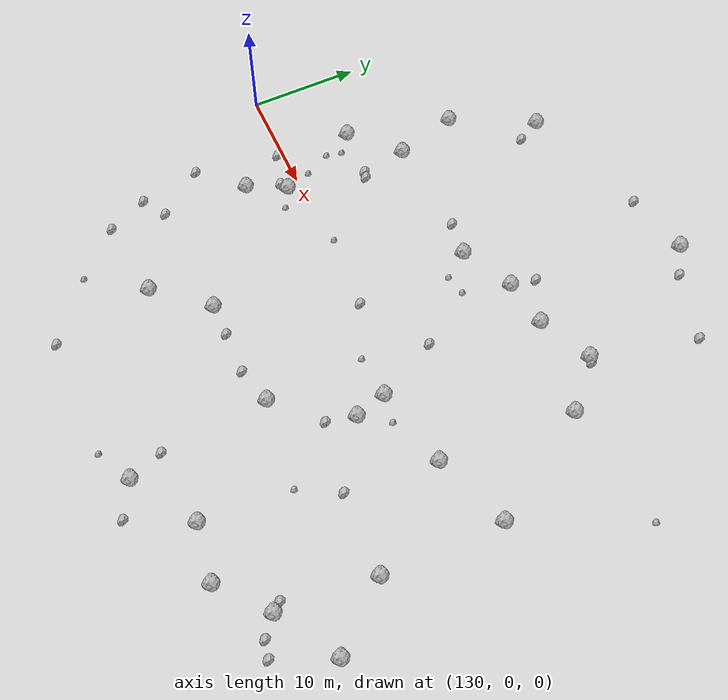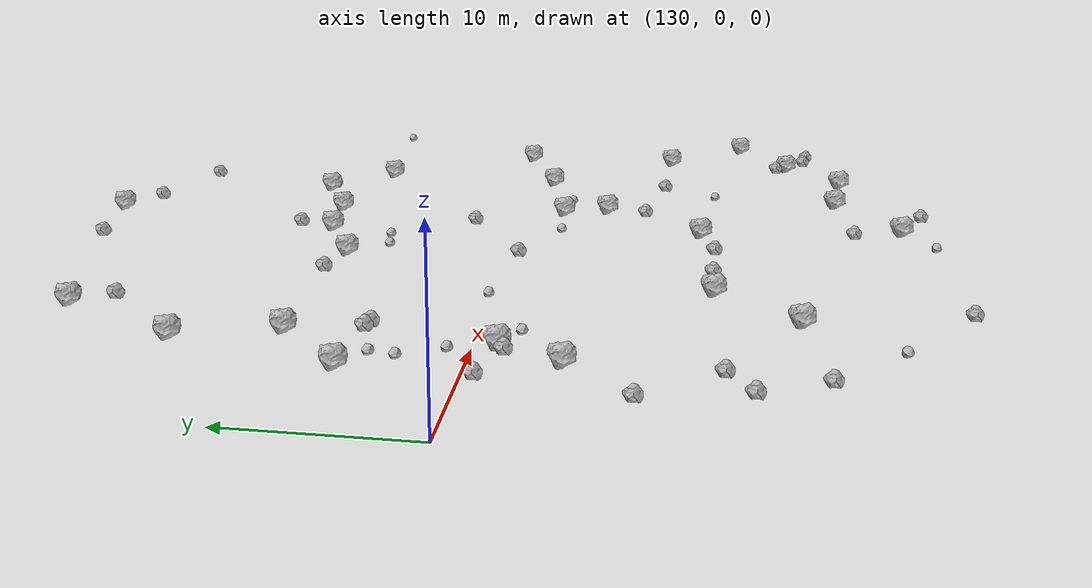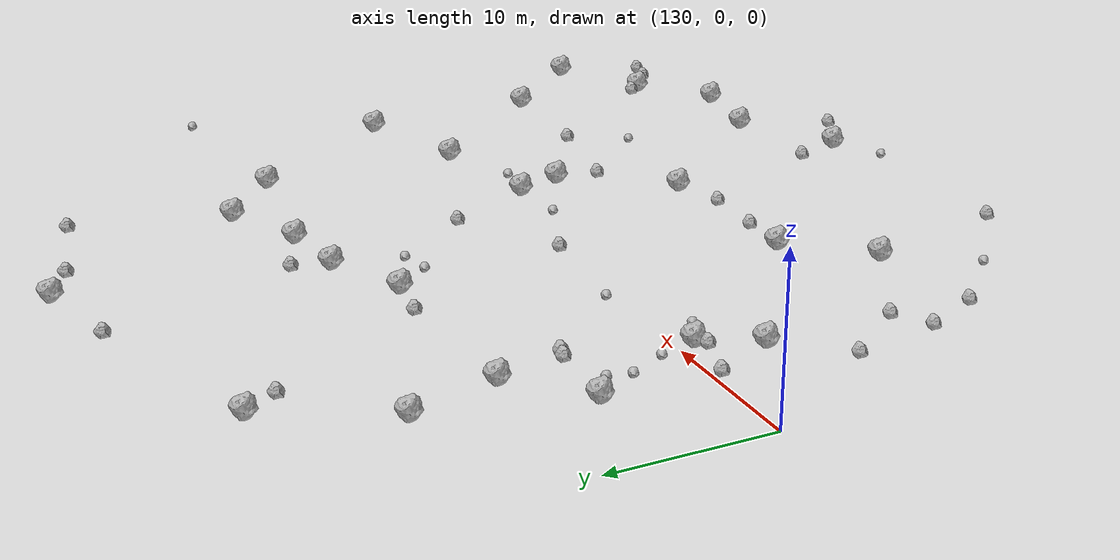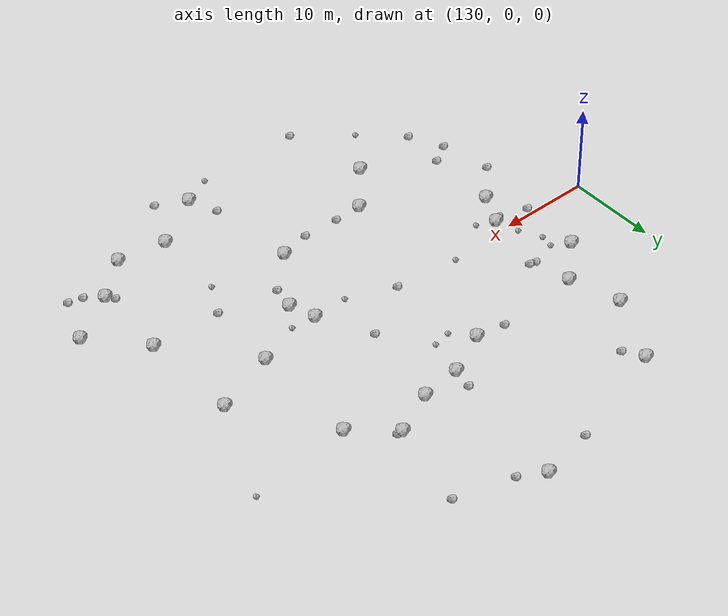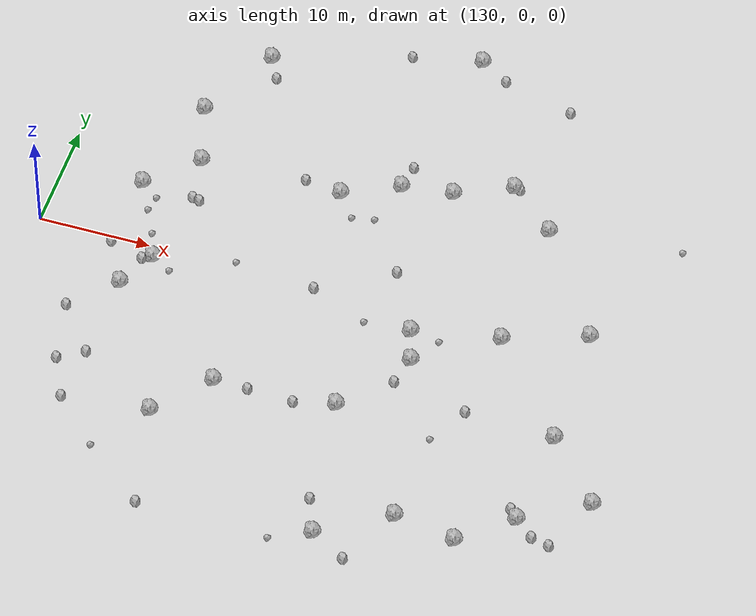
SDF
<sdf version="1.6">
 <world name="default">
  <include><uri>model://sun</uri></include>
  <model name="rock1_4_2">
   <include><uri>model://rock1</uri><pose>141.2948642835391 10.244398767035278 0.5 0 0 0</pose></include>
  </model>
  <model name="rock1_4_3">
   <include><uri>model://rock1</uri><pose>178.91906402392968 1.7877701791086196 0.5 0 0 0</pose></include>
  </model>
  <model name="rock1_4_4">
   <include><uri>model://rock1</uri><pose>138.97126836219502 -4.655300727973909 0.5 0 0 0</pose></include>
  </model>
  <model name="rock1_4_5">
   <include><uri>model://rock1</uri><pose>171.83903862915193 -0.6767519039436998 0.5 0 0 0</pose></include>
  </model>
  <model name="rock1_4_6">
   <include><uri>model://rock1</uri><pose>153.9897494964462 10.373310837223237 0.5 0 0 0</pose></include>
  </model>
  <model name="rock1_4_7">
   <include><uri>model://rock1</uri><pose>183.83128226795515 -14.881187880556059 0.5 0 0 0</pose></include>
  </model>
  <model name="rock1_4_8">
   <include><uri>model://rock1</uri><pose>168.23735215238227 15.494611902185866 0.5 0 0 0</pose></include>
  </model>
  <model name="rock1_4_9">
   <include><uri>model://rock1</uri><pose>158.81618112194099 12.679677974888222 0.5 0 0 0</pose></include>
  </model>
  <model name="rock1_4_10">
   <include><uri>model://rock1</uri><pose>137.20557807359523 6.35323375775971 0.5 0 0 0</pose></include>
  </model>
  <model name="rock1_4_11">
   <include><uri>model://rock1</uri><pose>165.1589130768262 -5.13469923959903 0.5 0 0 0</pose></include>
  </model>
  <model name="rock1_4_12">
   <include><uri>model://rock1</uri><pose>178.29936744005036 -18.198119758564147 0.5 0 0 0</pose></include>
  </model>
  <model name="rock1_4_13">
   <include><uri>model://rock1</uri><pose>174.01718051051427 -21.73492630758345 0.5 0 0 0</pose></include>
  </model>
  <model name="rock1_4_14">
   <include><uri>model://rock1</uri><pose>160.57654238745403 -11.48922303453309 0.5 0 0 0</pose></include>
  </model>
  <model name="rock1_4_15">
   <include><uri>model://rock1</uri><pose>172.44007826673214 11.754373896801347 0.5 0 0 0</pose></include>
  </model>
  <model name="rock1_4_16">
   <include><uri>model://rock1</uri><pose>162.72666093477503 -24.503844207868795 0.5 0 0 0</pose></include>
  </model>
  <model name="rock1_4_17">
   <include><uri>model://rock1</uri><pose>164.25572143038787 -2.213193607192526 0.5 0 0 0</pose></include>
  </model>
  <model name="rock1_4_18">
   <include><uri>model://rock1</uri><pose>178.9823131051574 -9.327160343594485 0.5 0 0 0</pose></include>
  </model>
  <model name="rock1_4_19">
   <include><uri>model://rock1</uri><pose>143.44675627610047 23.317852640166578 0.5 0 0 0</pose></include>
  </model>
  <model name="rock1_4_20">
   <include><uri>model://rock1</uri><pose>145.89107724175503 -16.74009601169268 0.5 0 0 0</pose></include>
  </model>
  <model name="rock1_4_21">
   <include><uri>model://rock1</uri><pose>163.3552137860157 13.265629290001044 0.5 0 0 0</pose></include>
  </model>
  <model name="rock1_4_22">
   <include><uri>model://rock1</uri><pose>140.73578703354295 -1.1828196008135201 0.5 0 0 0</pose></include>
  </model>
  <model name="rock1_4_23">
   <include><uri>model://rock1</uri><pose>161.46813076423769 28.506312337856713 0.5 0 0 0</pose></include>
  </model>
  <model name="rock1_4_24">
   <include><uri>model://rock1</uri><pose>149.94314863434084 -12.165202254761603 0.5 0 0 0</pose></include>
  </model>
  <model name="rock1_4_25">
   <include><uri>model://rock1</uri><pose>139.64817234133005 15.906190477715697 0.5 0 0 0</pose></include>
  </model>
  <model name="rock1_4_26">
   <include><uri>model://rock1</uri><pose>168.63049511700285 -20.864258532875915 0.5 0 0 0</pose></include>
  </model>
  <model name="rock2_4_0">
   <include><uri>model://rock2</uri><pose>161.2632724087291 3.4891525238041083 0.3 0 0 0</pose></include>
  </model>
  <model name="rock2_4_1">
   <include><uri>model://rock2</uri><pose>179.96659379343322 -19.58591639116535 0.3 0 0 0</pose></include>
  </model>
  <model name="rock2_4_2">
   <include><uri>model://rock2</uri><pose>141.8806042518827 6.076555109470178 0.3 0 0 0</pose></include>
  </model>
  <model name="rock2_4_3">
   <include><uri>model://rock2</uri><pose>136.76152932253672 -0.6063844149207078 0.3 0 0 0</pose></include>
  </model>
  <model name="rock2_4_4">
   <include><uri>model://rock2</uri><pose>177.56902055777985 -17.35654899952295 0.3 0 0 0</pose></include>
  </model>
  <model name="rock2_4_5">
   <include><uri>model://rock2</uri><pose>171.11401899012253 -8.986533274121264 0.3 0 0 0</pose></include>
  </model>
  <model name="rock2_4_6">
   <include><uri>model://rock2</uri><pose>181.55997039983606 -19.96054230782696 0.3 0 0 0</pose></include>
  </model>
  <model name="rock2_4_7">
   <include><uri>model://rock2</uri><pose>170.5351748403075 25.12999434011072 0.3 0 0 0</pose></include>
  </model>
  <model name="rock2_4_8">
   <include><uri>model://rock2</uri><pose>147.84631939117224 -25.957433406107562 0.3 0 0 0</pose></include>
  </model>
  <model name="rock2_4_9">
   <include><uri>model://rock2</uri><pose>164.50641521229264 -7.772113929558564 0.3 0 0 0</pose></include>
  </model>
  <model name="rock2_4_10">
   <include><uri>model://rock2</uri><pose>138.28552261861904 -17.565269645438068 0.3 0 0 0</pose></include>
  </model>
  <model name="rock2_4_11">
   <include><uri>model://rock2</uri><pose>138.72250769086094 -12.54326629599155 0.3 0 0 0</pose></include>
  </model>
  <model name="rock2_4_12">
   <include><uri>model://rock2</uri><pose>161.46040594181858 -21.33156392116213 0.3 0 0 0</pose></include>
  </model>
  <model name="rock2_4_13">
   <include><uri>model://rock2</uri><pose>157.0343199826508 -12.327780157547139 0.3 0 0 0</pose></include>
  </model>
  <model name="rock2_4_14">
   <include><uri>model://rock2</uri><pose>142.54499615600213 5.8978535641638175 0.3 0 0 0</pose></include>
  </model>
  <model name="rock2_4_15">
   <include><uri>model://rock2</uri><pose>168.75567567003347 15.414375659663222 0.3 0 0 0</pose></include>
  </model>
  <model name="rock2_4_16">
   <include><uri>model://rock2</uri><pose>155.3432115321631 27.20867602311877 0.3 0 0 0</pose></include>
  </model>
  <model name="rock2_4_17">
   <include><uri>model://rock2</uri><pose>154.9808271060756 -0.28182780897580884 0.3 0 0 0</pose></include>
  </model>
  <model name="rock2_4_18">
   <include><uri>model://rock2</uri><pose>150.65362793025906 10.881481678952973 0.3 0 0 0</pose></include>
  </model>
  <model name="rock2_4_19">
   <include><uri>model://rock2</uri><pose>139.88993570279402 -1.6091070690988616 0.3 0 0 0</pose></include>
  </model>
  <model name="rock2_4_20">
   <include><uri>model://rock2</uri><pose>136.5377028351607 -13.88109703976292 0.3 0 0 0</pose></include>
  </model>
  <model name="rock2_4_21">
   <include><uri>model://rock2</uri><pose>135.4084188192905 -8.301738477240416 0.3 0 0 0</pose></include>
  </model>
  <model name="rock2_4_22">
   <include><uri>model://rock2</uri><pose>164.08830794830558 26.91743640725432 0.3 0 0 0</pose></include>
  </model>
  <model name="rock2_4_23">
   <include><uri>model://rock2</uri><pose>144.57909921455223 21.161557727188864 0.3 0 0 0</pose></include>
  </model>
  <model name="rock2_4_24">
   <include><uri>model://rock2</uri><pose>165.86691763227543 -26.245595524829625 0.3 0 0 0</pose></include>
  </model>
  <model name="rock2_4_25">
   <include><uri>model://rock2</uri><pose>159.22646190754202 14.997888978201871 0.3 0 0 0</pose></include>
  </model>
  <model name="rock2_4_26">
   <include><uri>model://rock2</uri><pose>152.98674111603128 -12.181878575392055 0.3 0 0 0</pose></include>
  </model>
  <model name="rock3_4_0">
   <include><uri>model://rock3</uri><pose>160.13051278995607 -2.4726758713837853 0.2 0 0 0</pose></include>
  </model>
  <model name="rock3_4_1">
   <include><uri>model://rock3</uri><pose>155.68765155268434 8.044075780350624 0.2 0 0 0</pose></include>
  </model>
  <model name="rock3_4_2">
   <include><uri>model://rock3</uri><pose>159.3344740330976 -26.125694264309956 0.2 0 0 0</pose></include>
  </model>
  <model name="rock3_4_3">
   <include><uri>model://rock3</uri><pose>166.85208952891696 -2.6111850224441646 0.2 0 0 0</pose></include>
  </model>
  <model name="rock3_4_4">
   <include><uri>model://rock3</uri><pose>169.10498260601534 -12.589392574367 0.2 0 0 0</pose></include>
  </model>
  <model name="rock3_4_5">
   <include><uri>model://rock3</uri><pose>138.85594527830185 5.054182363065443 0.2 0 0 0</pose></include>
  </model>
  <model name="rock3_4_6">
   <include><uri>model://rock3</uri><pose>139.80625077169526 1.2209913076823398 0.2 0 0 0</pose></include>
  </model>
  <model name="rock3_4_7">
   <include><uri>model://rock3</uri><pose>147.72658904665238 0.37638483047136617 0.2 0 0 0</pose></include>
  </model>
  <model name="rock3_4_8">
   <include><uri>model://rock3</uri><pose>157.65207441707776 8.441511886602214 0.2 0 0 0</pose></include>
  </model>
  <model name="rock3_4_9">
   <include><uri>model://rock3</uri><pose>142.53771026184086 -2.2234227907044612 0.2 0 0 0</pose></include>
  </model>
  <model name="rock3_4_10">
   <include><uri>model://rock3</uri><pose>138.58286477019644 3.6021890661213547 0.2 0 0 0</pose></include>
  </model>
  <model name="rock3_4_11">
   <include><uri>model://rock3</uri><pose>184.01602368687247 12.9232645108928 0.2 0 0 0</pose></include>
  </model>
  <model name="rock3_4_12">
   <include><uri>model://rock3</uri><pose>142.325427033811 -21.621583649875113 0.2 0 0 0</pose></include>
  </model>
 </world>
</sdf>
